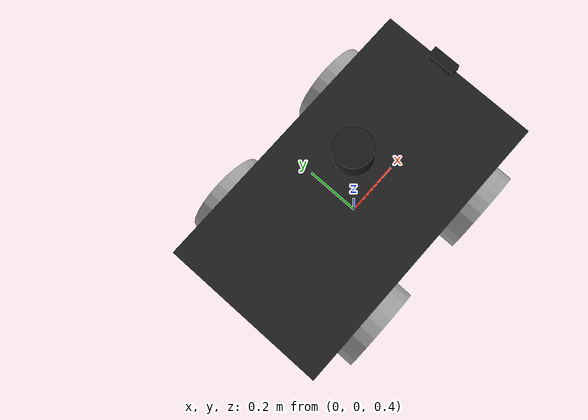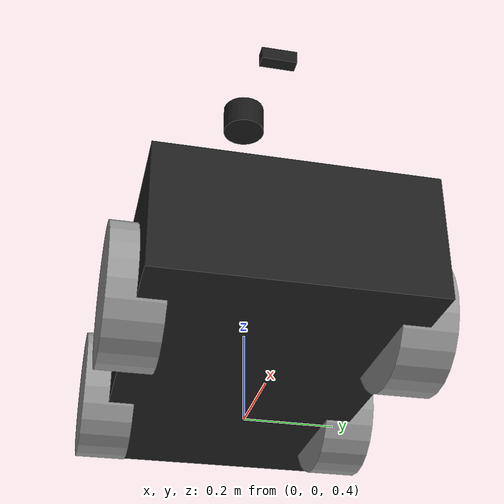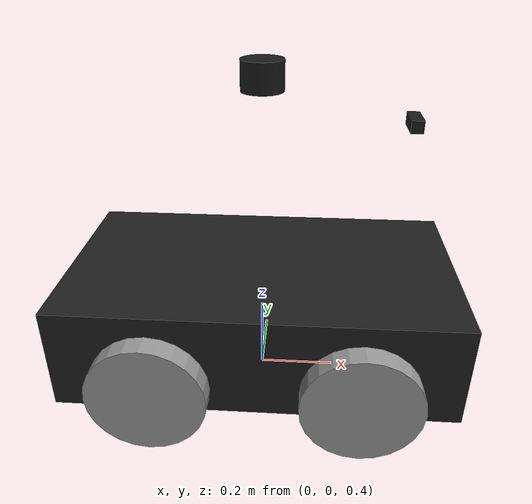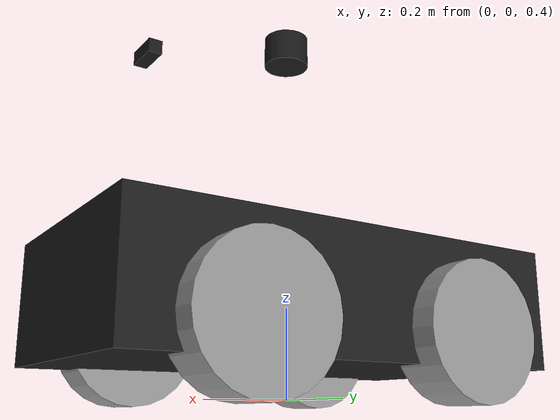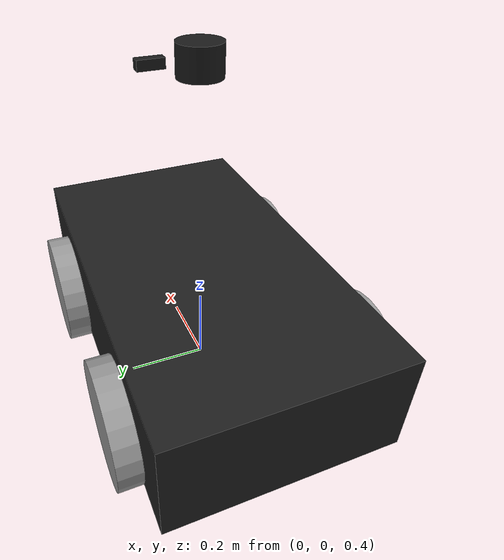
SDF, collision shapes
<?xml version="1.0" ?>
<sdf version="1.5">
  <model name="husky">
    <pose>0 0 .5 0 0 0</pose>

    <!-- Main Chassis -->
    <link name="base_link">
      <!-- Physics -->
      <collision name="collision">
        <pose>0 0 0.1 0 0 0</pose>
        <geometry>
          <box>
            <size>1.0074 0.5709 0.2675</size>
          </box>
        </geometry>
      </collision>
      <inertial>
        <mass>33.6651</mass>
        <pose>-0.0856132 -0.000839955 0.238145 0 0 0</pose>
        <inertia>
          <ixx>2.22177</ixx>
          <ixy>-0.0235094</ixy>
          <ixz>0.273631</ixz>
          <iyy>3.40597</iyy>
          <iyz>0.0023828</iyz>
          <izz>2.11219</izz>
        </inertia>
      </inertial>

      <!-- Visual -->
      <!-- Base frame -->
      <visual name="base">
        <pose>0 0 0 0 0 0</pose>
        <geometry>
          <mesh>
            <uri>model://husky/meshes/base_link.stl</uri>
          </mesh>
        </geometry>
        <material>
          <script>
            <name>Gazebo/FlatBlack</name>
          </script>
        </material>
      </visual>

      <!-- Top Plate -->
      <visual name="top_plate">
        <pose>0 0 0 0 0 0</pose>
        <geometry>
          <mesh>
            <uri>model://husky/meshes/top_plate.stl</uri>
          </mesh>
        </geometry>
        <material>
          <script>
            <name>Gazebo/Yellow</name>
          </script>
        </material>
      </visual>

      <!-- Front Bumper -->
      <visual name="front_bumper">
        <pose>0.47 0 0.091 0 0 0</pose>
        <geometry>
          <mesh>
            <uri>model://husky/meshes/bumper.stl</uri>
          </mesh>
        </geometry>
        <material>
          <script>
            <name>Gazebo/FlatBlack</name>
          </script>
        </material>
      </visual>

      <!-- Rear Bumper -->
      <visual name="rear_bumper">
        <pose>-0.47 0 0.091 0 0 3.141</pose>
        <geometry>
          <mesh>
            <uri>model://husky/meshes/bumper.stl</uri>
          </mesh>
        </geometry>
        <material>
          <script>
            <name>Gazebo/FlatBlack</name>
          </script>
        </material>
      </visual>

      <!-- User Rail -->
      <visual name="user_rail">
        <pose>0.272 0 0.245 0 0 0</pose>
        <geometry>
          <mesh>
            <uri>model://husky/meshes/user_rail.stl</uri>
          </mesh>
        </geometry>
        <material>
          <script>
            <name>Gazebo/Grey</name>
          </script>
        </material>
      </visual>
    </link>

    <!-- ================= VELODYNE VLP-16 LIDAR ================= -->
    <link name="velodyne_base_link">
      <pose>0 0 0.7195 0 0 0</pose>
      <inertial>
        <mass>0.825345</mass>
        <pose>0 0 0 0 0 0</pose>
        <inertia>
          <ixx>0.000994392</ixx>
          <ixy>0</ixy>
          <ixz>0</ixz>
          <iyy>0.000994392</iyy>
          <iyz>0</iyz>
          <izz>0.000994392</izz>
        </inertia>
      </inertial>

      <!-- Visual del Velodyne -->
      <collision name='velodyne_base_collision'>
        <geometry>
          <cylinder>
            <radius>0.0516</radius>
            <length>0.0717</length>
          </cylinder>
        </geometry>
      </collision>

      <visual name='velodyne_base_visual'>
        <geometry>
          <cylinder>
            <radius>0.0516</radius>
            <length>0.0717</length>
          </cylinder>
        </geometry>
        <material>
          <ambient>0.1 0.1 0.1 1</ambient>
          <diffuse>0.1 0.1 0.1 1</diffuse>
          <specular>0.1 0.1 0.1 1</specular>
        </material>
      </visual>

      <!-- Sensor LiDAR Velodyne VLP-16 -->
      <sensor name='velodyne-VLP16' type='gpu_ray'>
        <pose>0 0 0.0377 0 0 0</pose>
        <visualize>false</visualize>
        <update_rate>10</update_rate>
        <ray>
          <scan>
            <horizontal>
              <samples>1875</samples>
              <resolution>1</resolution>
              <min_angle>-3.14159</min_angle>
              <max_angle>3.14159</max_angle>
            </horizontal>
            <vertical>
              <samples>16</samples>
              <resolution>1</resolution>
              <min_angle>-0.261799</min_angle>
              <max_angle>0.261799</max_angle>
            </vertical>
          </scan>
          <range>
            <min>0.3</min>
            <max>130.0</max>
            <resolution>0.001</resolution>
          </range>
          <noise>
            <type>gaussian</type>
            <mean>0.0</mean>
            <stddev>0.011314</stddev>
          </noise>
        </ray>

        <plugin name='gazebo_ros_laser_controller' filename='libgazebo_ros_velodyne_gpu_laser.so'>
          <topicName>/velodyne_points</topicName>
          <frameName>husky/velodyne_base_link</frameName>
          <min_range>0.9</min_range>
          <max_range>130.0</max_range>
          <gaussianNoise>0.0</gaussianNoise>
        </plugin>
      </sensor>
    </link>

    <!-- Joint para montar el Velodyne al Husky -->
    <joint name='velodyne_base_mount_joint' type='fixed'>
      <parent>base_link</parent>
      <child>velodyne_base_link</child>
    </joint>

    <!-- ================= IMU SENSOR ================= -->
    <link name='imu_link'>
      <pose>-0.063983 -0.000629 0.199726 0 0 0</pose>
      <inertial>
        <mass>0.0149159</mass>
        <inertia>
          <ixx>9.94392e-05</ixx>
          <ixy>0</ixy>
          <ixz>0</ixz>
          <iyy>9.94392e-05</iyy>
          <iyz>0</iyz>
          <izz>9.94392e-05</izz>
        </inertia>
      </inertial>

      <collision name='imu_collision'>
        <geometry>
          <box>
            <size>0.05 0.05 0.02</size>
          </box>
        </geometry>
      </collision>

      <visual name='imu_visual'>
        <geometry>
          <box>
            <size>0.05 0.05 0.02</size>
          </box>
        </geometry>
        <material>
          <ambient>0.3 0.3 0.3 1</ambient>
          <diffuse>0.3 0.3 0.3 1</diffuse>
        </material>
      </visual>

      <!-- Sensor IMU -->
      <sensor name='imu_sensor' type='imu'>
        <always_on>1</always_on>
        <update_rate>100</update_rate>
        <visualize>true</visualize>
        <imu>
          <angular_velocity>
            <x>
              <noise type='gaussian'>
                <mean>0</mean>
                <stddev>0.009</stddev>
                <bias_mean>0.00075</bias_mean>
                <bias_stddev>0.005</bias_stddev>
                <dynamic_bias_stddev>0.00002</dynamic_bias_stddev>
                <dynamic_bias_correlation_time>400.0</dynamic_bias_correlation_time>
                <precision>0.00025</precision>
              </noise>
            </x>
            <y>
              <noise type='gaussian'>
                <mean>0</mean>
                <stddev>0.009</stddev>
                <bias_mean>0.00075</bias_mean>
                <bias_stddev>0.005</bias_stddev>
                <dynamic_bias_stddev>0.00002</dynamic_bias_stddev>
                <dynamic_bias_correlation_time>400.0</dynamic_bias_correlation_time>
                <precision>0.00025</precision>
              </noise>
            </y>
            <z>
              <noise type='gaussian'>
                <mean>0</mean>
                <stddev>0.009</stddev>
                <bias_mean>0.00075</bias_mean>
                <bias_stddev>0.005</bias_stddev>
                <dynamic_bias_stddev>0.00002</dynamic_bias_stddev>
                <dynamic_bias_correlation_time>400.0</dynamic_bias_correlation_time>
                <precision>0.00025</precision>
              </noise>
            </z>
          </angular_velocity>
          <linear_acceleration>
            <x>
              <noise type='gaussian'>
                <mean>0</mean>
                <stddev>0.021</stddev>
                <bias_mean>0.05</bias_mean>
                <bias_stddev>0.0075</bias_stddev>
                <dynamic_bias_stddev>0.000375</dynamic_bias_stddev>
                <dynamic_bias_correlation_time>175.0</dynamic_bias_correlation_time>
                <precision>0.005</precision>
              </noise>
            </x>
            <y>
              <noise type='gaussian'>
                <mean>0</mean>
                <stddev>0.021</stddev>
                <bias_mean>0.05</bias_mean>
                <bias_stddev>0.0075</bias_stddev>
                <dynamic_bias_stddev>0.000375</dynamic_bias_stddev>
                <dynamic_bias_correlation_time>175.0</dynamic_bias_correlation_time>
                <precision>0.005</precision>
              </noise>
            </y>
            <z>
              <noise type='gaussian'>
                <mean>0</mean>
                <stddev>0.021</stddev>
                <bias_mean>0.05</bias_mean>
                <bias_stddev>0.0075</bias_stddev>
                <dynamic_bias_stddev>0.000375</dynamic_bias_stddev>
                <dynamic_bias_correlation_time>175.0</dynamic_bias_correlation_time>
                <precision>0.005</precision>
              </noise>
            </z>
          </linear_acceleration>
        </imu>

        <plugin name='imu_plugin' filename='libgazebo_ros_imu_sensor.so'>
          <topicName>/imu/data_raw</topicName>
          <bodyName>imu_link</bodyName>
          <updateRateHZ>100.0</updateRateHZ>
          <gaussianNoise>0.0</gaussianNoise>
          <xyzOffset>0 0 0</xyzOffset>
          <rpyOffset>0 0 0</rpyOffset>
          <frameName>husky/imu_link</frameName>
          <initialOrientationAsReference>false</initialOrientationAsReference>
        </plugin>
      </sensor>
    </link>

    <joint name='imu_joint' type='fixed'>
      <parent>base_link</parent>
      <child>imu_link</child>
    </joint>

    <!-- ================= WHEELS ================= -->

    <!-- Back Left Wheel -->
    <link name="back_left_wheel">
      <pose>-0.256 0.285475 0.035 0 0 0</pose>
      <inertial>
        <mass>2.62092</mass>
        <pose>0 0 0 0 0 0</pose>
        <inertia>
          <ixx>0.0245304</ixx>
          <ixy>0</ixy>
          <ixz>0</ixz>
          <iyy>0.0245304</iyy>
          <iyz>0</iyz>
          <izz>0.0438584</izz>
        </inertia>
      </inertial>
      <collision name="back_left_wheel_collision">
        <pose>0 0 0 -1.5707 0 0</pose>
        <geometry>
          <cylinder>
            <radius>0.148</radius>
            <length>0.1143</length>
          </cylinder>
        </geometry>
        <surface>
          <friction>
            <ode>
              <mu>100000.0</mu>
              <mu2>100000.0</mu2>
              <slip1>0.0</slip1>
              <slip2>0.1</slip2>
            </ode>
          </friction>
        </surface>
      </collision>
      <visual name="back_left_wheel">
        <pose>0 0 0 -3.14159 0 0</pose>
        <geometry>
          <mesh>
            <uri>model://husky/meshes/wheel.stl</uri>
            <scale>0.832396 1.0 0.832396</scale>
          </mesh>
        </geometry>
        <material>
          <script>
            <name>Gazebo/Grey</name>
          </script>
        </material>
      </visual>
    </link>

    <joint name="back_left_joint" type="revolute">
      <parent>base_link</parent>
      <child>back_left_wheel</child>
      <axis>
        <xyz>0 1 0</xyz>
        <use_parent_model_frame>true</use_parent_model_frame>
      </axis>
      <physics>
        <ode>
          <limit>
            <cfm>0.000000</cfm>
            <erp>0.900000</erp>
          </limit>
        </ode>
      </physics>
    </joint>

    <!-- Back Right Wheel -->
    <link name="back_right_wheel">
      <pose>-0.256 -0.285475 0.035 0 0 0</pose>
      <inertial>
        <mass>2.62092</mass>
        <pose>0 0 0 0 0 0</pose>
        <inertia>
          <ixx>0.0245304</ixx>
          <ixy>0</ixy>
          <ixz>0</ixz>
          <iyy>0.0245304</iyy>
          <iyz>0</iyz>
          <izz>0.0438584</izz>
        </inertia>
      </inertial>
      <collision name="back_right_wheel_collision">
        <pose>0 0 0 -1.5707 0 0</pose>
        <geometry>
          <cylinder>
            <radius>0.148</radius>
            <length>0.1143</length>
          </cylinder>
        </geometry>
        <surface>
          <friction>
            <ode>
              <mu>100000.0</mu>
              <mu2>100000.0</mu2>
              <slip1>0.0</slip1>
              <slip2>0.1</slip2>
            </ode>
          </friction>
        </surface>
      </collision>
      <visual name="back_right_wheel">
        <pose>0 0 0 -3.14159 0 0</pose>
        <geometry>
          <mesh>
            <uri>model://husky/meshes/wheel.stl</uri>
            <scale>0.832396 1.0 0.832396</scale>
          </mesh>
        </geometry>
        <material>
          <script>
            <name>Gazebo/Grey</name>
          </script>
        </material>
      </visual>
    </link>

    <joint name="back_right_joint" type="revolute">
      <parent>base_link</parent>
      <child>back_right_wheel</child>
      <axis>
        <xyz>0 1 0</xyz>
        <use_parent_model_frame>true</use_parent_model_frame>
      </axis>
      <physics>
        <ode>
          <limit>
            <cfm>0.000000</cfm>
            <erp>0.900000</erp>
          </limit>
        </ode>
      </physics>
    </joint>

    <!-- Front Left Wheel -->
    <link name="front_left_wheel">
      <pose>0.256 0.285475 0.035 0 0 0</pose>
      <inertial>
        <mass>2.62092</mass>
        <pose>0 0 0 0 0 0</pose>
        <inertia>
          <ixx>0.0245304</ixx>
          <ixy>0</ixy>
          <ixz>0</ixz>
          <iyy>0.0245304</iyy>
          <iyz>0</iyz>
          <izz>0.0438584</izz>
        </inertia>
      </inertial>
      <collision name="front_left_wheel_collision">
        <pose>0 0 0 -1.5707 0 0</pose>
        <geometry>
          <cylinder>
            <radius>0.148</radius>
            <length>0.1143</length>
          </cylinder>
        </geometry>
        <surface>
          <friction>
            <ode>
              <mu>100000.0</mu>
              <mu2>100000.0</mu2>
              <slip1>0.0</slip1>
              <slip2>0.1</slip2>
            </ode>
          </friction>
        </surface>
      </collision>
      <visual name="front_left_wheel">
        <pose>0 0 0 -3.14159 0 0</pose>
        <geometry>
          <mesh>
            <uri>model://husky/meshes/wheel.stl</uri>
            <scale>0.832396 1.0 0.832396</scale>
          </mesh>
        </geometry>
        <material>
          <script>
            <name>Gazebo/Grey</name>
          </script>
        </material>
      </visual>
    </link>

    <joint name="front_left_joint" type="revolute">
      <parent>base_link</parent>
      <child>front_left_wheel</child>
      <axis>
        <xyz>0 1 0</xyz>
        <use_parent_model_frame>true</use_parent_model_frame>
      </axis>
      <physics>
        <ode>
          <limit>
            <cfm>0.000000</cfm>
            <erp>0.900000</erp>
          </limit>
        </ode>
      </physics>
    </joint>

    <!-- Front Right Wheel -->
    <link name="front_right_wheel">
      <pose>0.256 -0.285475 0.035 0 0 0</pose>
      <inertial>
        <mass>2.62092</mass>
        <pose>0 0 0 0 0 0</pose>
        <inertia>
          <ixx>0.0245304</ixx>
          <ixy>0</ixy>
          <ixz>0</ixz>
          <iyy>0.0245304</iyy>
          <iyz>0</iyz>
          <izz>0.0438584</izz>
        </inertia>
      </inertial>
      <collision name="front_right_wheel_collision">
        <pose>0 0 0 -1.5707 0 0</pose>
        <geometry>
          <cylinder>
            <radius>0.148</radius>
            <length>0.1143</length>
          </cylinder>
        </geometry>
        <surface>
          <friction>
            <ode>
              <mu>100000.0</mu>
              <mu2>100000.0</mu2>
              <slip1>0.0</slip1>
              <slip2>0.1</slip2>
            </ode>
          </friction>
        </surface>
      </collision>
      <visual name="front_right_wheel">
        <pose>0 0 0 -3.14159 0 0</pose>
        <geometry>
          <mesh>
            <uri>model://husky/meshes/wheel.stl</uri>
            <scale>0.832396 1.0 0.832396</scale>
          </mesh>
        </geometry>
        <material>
          <script>
            <name>Gazebo/Grey</name>
          </script>
        </material>
      </visual>
    </link>

    <joint name="front_right_joint" type="revolute">
      <parent>base_link</parent>
      <child>front_right_wheel</child>
      <axis>
        <xyz>0 1 0</xyz>
        <use_parent_model_frame>true</use_parent_model_frame>
      </axis>
      <physics>
        <ode>
          <limit>
            <cfm>0.000000</cfm>
            <erp>0.900000</erp>
          </limit>
        </ode>
      </physics>
    </joint>

    <!-- ================= CAMERA ================= -->

    <link name='camera_link'>
      <pose>0.3543 0 0.6179 0 0 0</pose>
      <inertial>
        <mass>0.00994392</mass>
        <inertia>
          <ixx>9.94392e-05</ixx>
          <ixy>0</ixy>
          <ixz>0</ixz>
          <iyy>9.94392e-05</iyy>
          <iyz>0</iyz>
          <izz>9.94392e-05</izz>
        </inertia>
      </inertial>

      <collision name='camera_collision'>
        <geometry>
          <box>
            <size>0.03 0.08 0.03</size>
          </box>
        </geometry>
      </collision>

      <visual name='camera_visual'>
        <geometry>
          <box>
            <size>0.03 0.08 0.03</size>
          </box>
        </geometry>
        <material>
          <ambient>0.1 0.1 0.1 1</ambient>
          <diffuse>0.1 0.1 0.1 1</diffuse>
        </material>
      </visual>

      <!-- Sensor de Camara -->
      <sensor name='camera_sensor' type='camera'>
        <update_rate>10</update_rate>
        <camera name='head'>
          <horizontal_fov>1.3962634</horizontal_fov>
          <image>
            <width>640</width>
            <height>480</height>
            <format>R8G8B8</format>
          </image>
          <clip>
            <near>0.02</near>
            <far>300</far>
          </clip>
          <noise>
            <type>gaussian</type>
            <mean>0.0</mean>
            <stddev>0.007</stddev>
          </noise>
        </camera>
        <plugin name='camera_controller' filename='libgazebo_ros_camera.so'>
          <alwaysOn>true</alwaysOn>
          <updateRate>0.0</updateRate>
          <cameraName>camera</cameraName>
          <imageTopicName>/camera/image_raw</imageTopicName>
          <cameraInfoTopicName>/camera/camera_info</cameraInfoTopicName>
          <frameName>husky/camera_optical_frame</frameName>
          <hackBaseline>0.07</hackBaseline>
          <distortionK1>0.0</distortionK1>
          <distortionK2>0.0</distortionK2>
          <distortionK3>0.0</distortionK3>
          <distortionT1>0.0</distortionT1>
          <distortionT2>0.0</distortionT2>
        </plugin>
      </sensor>
    </link>

    <joint name='camera_joint' type='fixed'>
      <parent>base_link</parent>
      <child>camera_link</child>
    </joint>

    <!-- Optical frame -->
    <link name='camera_optical_frame'>
      <pose relative_to="camera_link">0 0 0 -1.5707963267948966 0 -1.5707963267948966</pose>
      <inertial>
        <mass>0.000994392</mass>
        <inertia>
          <ixx>9.94392e-06</ixx>
          <ixy>0</ixy>
          <ixz>0</ixz>
          <iyy>9.94392e-06</iyy>
          <iyz>0</iyz>
          <izz>9.94392e-06</izz>
        </inertia>
      </inertial>
    </link>

    <joint name='camera_optical_joint' type='fixed'>
      <parent>camera_link</parent>
      <child>camera_optical_frame</child>
    </joint>

    <!-- ================= CONTROLLER PLUGIN ================= -->
    <plugin name='gazebo_ros_control' filename='libgazebo_ros_control.so'>
      <robotNamespace>/husky</robotNamespace>
      <robotSimType>gazebo_ros_control/DefaultRobotHWSim</robotSimType>
      <legacyModeNS>false</legacyModeNS>
    </plugin>

  </model>
</sdf>
